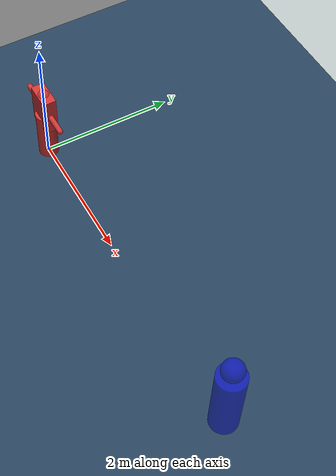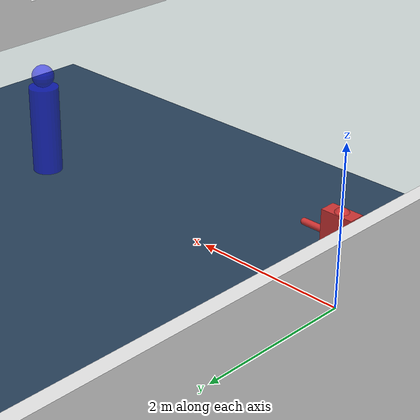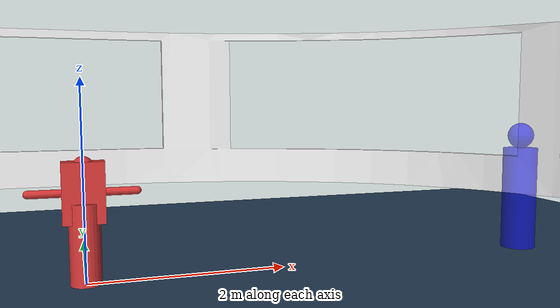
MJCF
<mujoco model="g1_office_environment">
  <compiler angle="radian" meshdir="." autolimits="true"/>

  <statistic center="0 0 2" extent="20"/>

  <visual>
    <headlight diffuse="0.6 0.6 0.6" ambient="0.3 0.3 0.3" specular="0 0 0"/>
    <rgba haze="0.15 0.25 0.35 1"/>
    <global azimuth="-130" elevation="-20"/>
  </visual>

  <default>
    <default class="visual">
      <geom group="2" type="mesh" contype="0" conaffinity="0"/>
    </default>
    <default class="collision">
      <geom group="3" type="mesh"/>
    </default>
  </default>

  <asset>
    <texture type="skybox" builtin="gradient" rgb1="0.3 0.5 0.7" rgb2="0 0 0" width="512" height="3072"/>
    <texture type="2d" name="groundplane" builtin="checker" mark="edge" rgb1="0.2 0.3 0.4" rgb2="0.1 0.2 0.3"
      markrgb="0.8 0.8 0.8" width="300" height="300"/>
    <material name="groundplane" texture="groundplane" texuniform="true" texrepeat="5 5" reflectance="0.2"/>
    <material name="wall" rgba="0.9 0.9 0.9 1" specular="0.1"/>

    <!-- Paredes do escritório com escala 10x maior -->
    <mesh name="office_walls" file="3d escritorio/body1_structure/body1_structure.obj" scale="0.01 0.01 0.01"/>
  </asset>

  <worldbody>
    <!-- Iluminação -->
    <light pos="0 0 10" dir="0 0 -1" directional="true"/>
    <light pos="10 10 8" dir="-1 -1 -1" directional="false"/>

    <!-- Chão maior -->
    <geom name="floor" size="50 50 0.05" type="plane" material="groundplane"/>

    <!-- Paredes do escritório (33m x 28m x 3.15m) -->
    <body name="walls" pos="-5.73 -7.00 0">
      <geom name="office_walls_geom" mesh="office_walls" class="visual" material="wall"/>
    </body>

    <!-- Robô G1 simplificado (~1.2m altura) -->
    <body name="g1_robot" pos="0 0 0">
      <!-- Base/pernas -->
      <geom type="cylinder" size="0.15 0.4" pos="0 0 0.4" rgba="0.8 0.2 0.2 0.9"/>
      <!-- Torso -->
      <geom type="box" size="0.2 0.1 0.3" pos="0 0 0.9" rgba="0.8 0.2 0.2 0.9"/>
      <!-- Cabeça -->
      <geom type="sphere" size="0.1" pos="0 0 1.15" rgba="0.8 0.2 0.2 0.9"/>
      <!-- Braços -->
      <geom type="capsule" size="0.04 0.25" pos="0.25 0 0.9" quat="0.707 0 0.707 0" rgba="0.8 0.2 0.2 0.9"/>
      <geom type="capsule" size="0.04 0.25" pos="-0.25 0 0.9" quat="0.707 0 0.707 0" rgba="0.8 0.2 0.2 0.9"/>
    </body>

    <!-- Referência de escala humana (1.7m) -->
    <body name="human_reference" pos="5 0 0">
      <geom type="cylinder" size="0.2 0.6" pos="0 0 0.6" rgba="0 0 1 0.5"/>
      <geom type="sphere" size="0.15" pos="0 0 1.35" rgba="0 0 1 0.5"/>
    </body>
  </worldbody>
</mujoco>
